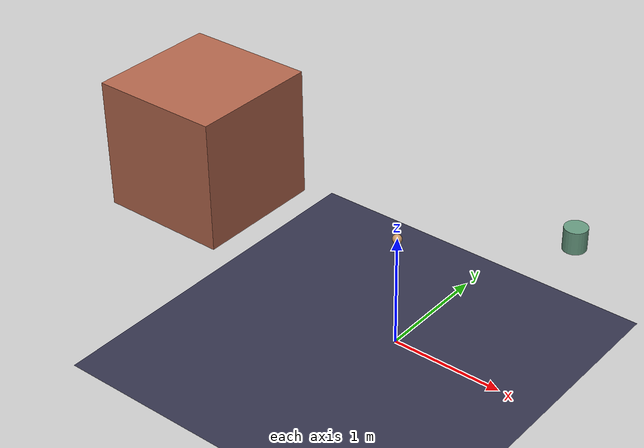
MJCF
<mujoco model="lidar_test">
  <default>
    <geom rgba=".8 .6 .4 1"/>
  </default>

  <worldbody>

    <body name="test_point1" pos="0 0 1" gravcomp="1">
      <joint type="free"/>
      <geom type="sphere" size="0.04"/>
    </body>

    <light pos="0 1 1" dir="0 -1 -1" diffuse="1 1 1"/>
    <body pos="1 1 1" name="slinam">
      <geom group="1" type="cylinder" size="0.1" fromto="0 0 0  0 0 -.2" rgba="0.4 0.6 0.5 1"/>
      <joint type="free"/>
    </body>

    <body pos="-1 -1 2" name="thebox">
      <geom group="0" type="box" size="0.5 0.5 0.5" rgba="0.7 0.4 0.3 1"/>
      <joint type="free"/>
    </body>

    <body pos="0 0 0">
      <geom group="0" type="plane" size="2 2 1" rgba="0.2 0.2 0.3 1"/>
    </body>

  </worldbody>

</mujoco>
